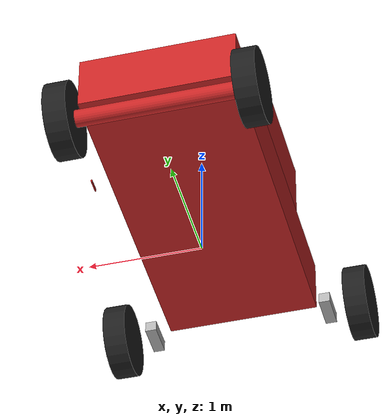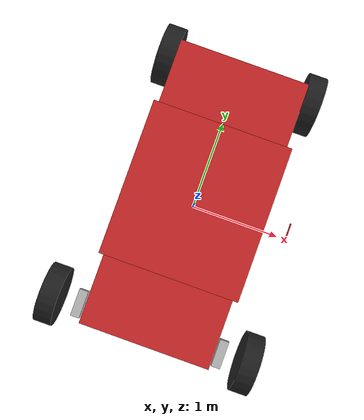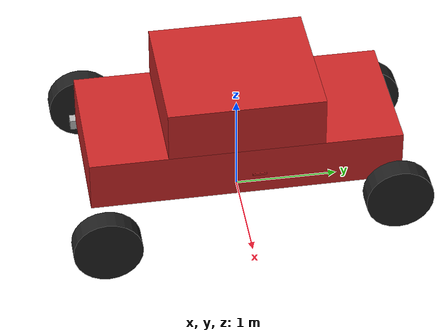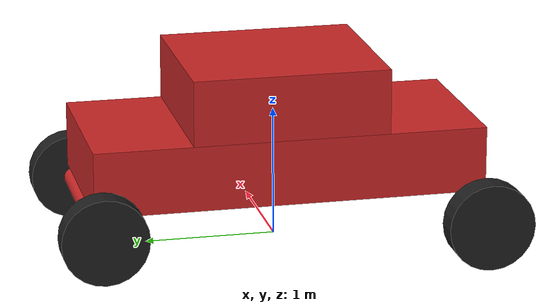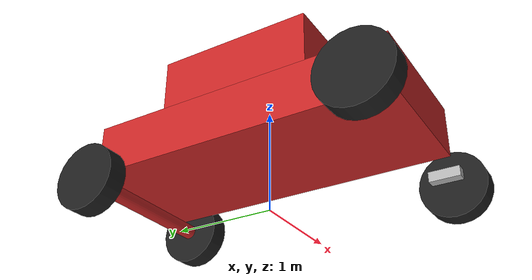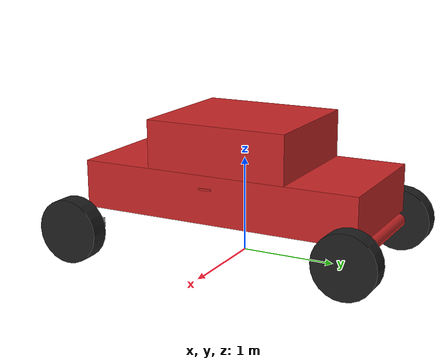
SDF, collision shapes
<?xml version="1.0" ?>
<sdf version='1.7'>
  <model name='steering_robot'>
    <link name='map'>
      <inertial>
        <pose>0 0.05241 0.011928 0 -0 0</pose>
        <mass>830</mass>
        <inertia>
          <ixx>687.053</ixx>
          <ixy>0</ixy>
          <ixz>0</ixz>
          <iyy>149.021</iyy>
          <iyz>-13.8361</iyz>
          <izz>783.643</izz>
        </inertia>
      </inertial>
      <collision name='map_fixed_joint_lump__ferrari_chassis_collision'>
        <pose>0 0 0.7 0 -0 0</pose>
        <geometry>
          <box>
            <size>1.357 3 0.5</size>
          </box>
        </geometry>
        <surface>
          <contact>
            <ode/>
          </contact>
          <friction>
            <ode/>
          </friction>
        </surface>
      </collision>
      <collision name='map_fixed_joint_lump__ferrari_chassis_collision_1'>
        <pose>0 0 1.2 0 -0 0</pose>
        <geometry>
          <box>
            <size>1.357 1.5 0.5</size>
          </box>
        </geometry>
        <surface>
          <contact>
            <ode/>
          </contact>
          <friction>
            <ode/>
          </friction>
        </surface>
      </collision>
      <collision name='map_fixed_joint_lump__camera_link_collision_2'>
        <pose>0.972286 0.065 0.907 0 -0 0</pose>
        <geometry>
          <box>
            <size>0.012 0.132 0.02</size>
          </box>
        </geometry>
      </collision>
      <collision name='map_fixed_joint_lump__rear_axle_collision_3'>
        <pose>0 1.45 0.33 0 1.5708 0</pose>
        <geometry>
          <cylinder>
            <length>1.6</length>
            <radius>0.075</radius>
          </cylinder>
        </geometry>
      </collision>
      <visual name='map_fixed_joint_lump__ferrari_chassis_visual'>
        <pose>0 0 0.7 0 -0 0</pose>
        <geometry>
          <box>
            <size>1.357 3 0.5</size>
          </box>
        </geometry>
        <material>
          <script>
            <name>Gazebo/Red</name>
            <uri>file://media/materials/scripts/gazebo.material</uri>
          </script>
        </material>
      </visual>
      <visual name='map_fixed_joint_lump__ferrari_chassis_visual_1'>
        <pose>0 0 1.2 0 -0 0</pose>
        <geometry>
          <box>
            <size>1.357 1 0.5</size>
          </box>
        </geometry>
        <material>
          <script>
            <name>Gazebo/Red</name>
            <uri>file://media/materials/scripts/gazebo.material</uri>
          </script>
        </material>
      </visual>
      <visual name='map_fixed_joint_lump__ferrari_chassis_visual_2'>
        <pose>0 0 0.7 0 -0 0</pose>
        <geometry>
          <box>
            <size>1.557 2 0.5</size>
          </box>
        </geometry>
        <material>
          <script>
            <name>Gazebo/Red</name>
            <uri>file://media/materials/scripts/gazebo.material</uri>
          </script>
        </material>
      </visual>
      <visual name='map_fixed_joint_lump__ferrari_chassis_visual_3'>
        <pose>0 0 0.7 0 -0 0</pose>
        <geometry>
          <box>
            <size>1.757 1.5 0.5</size>
          </box>
        </geometry>
        <material>
          <script>
            <name>Gazebo/Red</name>
            <uri>file://media/materials/scripts/gazebo.material</uri>
          </script>
        </material>
      </visual>
      <visual name='map_fixed_joint_lump__ferrari_chassis_visual_4'>
        <pose>0.5 1.4 1.05 0 -0 0</pose>
        <geometry>
          <box>
            <size>0.1 0.1 0.3</size>
          </box>
        </geometry>
        <material>
          <script>
            <name>Gazebo/Red</name>
            <uri>file://media/materials/scripts/gazebo.material</uri>
          </script>
        </material>
      </visual>
      <visual name='map_fixed_joint_lump__ferrari_chassis_visual_5'>
        <pose>-0.5 1.4 1.05 0 -0 0</pose>
        <geometry>
          <box>
            <size>0.1 0.1 0.3</size>
          </box>
        </geometry>
        <material>
          <script>
            <name>Gazebo/Red</name>
            <uri>file://media/materials/scripts/gazebo.material</uri>
          </script>
        </material>
      </visual>
      <visual name='map_fixed_joint_lump__ferrari_chassis_visual_6'>
        <pose>0 1.4 1.25 0 -0 0</pose>
        <geometry>
          <box>
            <size>1.357 0.2 0.1</size>
          </box>
        </geometry>
        <material>
          <script>
            <name>Gazebo/Red</name>
            <uri>file://media/materials/scripts/gazebo.material</uri>
          </script>
        </material>
      </visual>
      <visual name='map_fixed_joint_lump__ferrari_chassis_visual_7'>
        <pose>0 -1 1.05 0.6 -0 0</pose>
        <geometry>
          <box>
            <size>1.357 1.357 0.1</size>
          </box>
        </geometry>
        <material>
          <script>
            <name>Gazebo/Red</name>
            <uri>file://media/materials/scripts/gazebo.material</uri>
          </script>
        </material>
      </visual>
      <visual name='map_fixed_joint_lump__ferrari_chassis_visual_8'>
        <pose>0 0.75 1.05 -0.8 0 0</pose>
        <geometry>
          <box>
            <size>1.357 0.8785 0.1</size>
          </box>
        </geometry>
        <material>
          <script>
            <name>Gazebo/Red</name>
            <uri>file://media/materials/scripts/gazebo.material</uri>
          </script>
        </material>
      </visual>
      <visual name='map_fixed_joint_lump__camera_link_visual_9'>
        <pose>0.969286 0 0.9 1.57 -0 1.57</pose>
        <geometry>
          <mesh>
            <scale>1 1 1</scale>
            <uri>model://autopark/urdf/meshes/sensors/r200.dae</uri>
          </mesh>
        </geometry>
      </visual>
      <visual name='map_fixed_joint_lump__hokuyo_link_visual_10'>
        <pose>0.969286 0 0.7 0 -0 3.14</pose>
        <geometry>
          <box>
            <size>0.05 0.05 0.05</size>
          </box>
        </geometry>
        <material>
          <script>
            <name>Gazebo/Blue</name>
            <uri>file://media/materials/scripts/gazebo.material</uri>
          </script>
        </material>
      </visual>
      <visual name='map_fixed_joint_lump__rear_axle_visual_11'>
        <pose>0 1.45 0.33 0 1.5708 0</pose>
        <geometry>
          <cylinder>
            <length>1.6</length>
            <radius>0.075</radius>
          </cylinder>
        </geometry>
      </visual>
      <velocity_decay/>
      <velocity_decay/>
      <sensor name='camera1' type='depth'>
        <always_on>1</always_on>
        <visualize>0</visualize>
        <camera>
          <horizontal_fov>1.3439</horizontal_fov>
          <image>
            <width>1920</width>
            <height>1080</height>
            <format>R8G8B8</format>
          </image>
          <depth_camera>
            <output>depths</output>
          </depth_camera>
          <clip>
            <near>0.03</near>
            <far>100</far>
          </clip>
        </camera>
        <plugin name='camera_controller' filename='libgazebo_ros_openni_kinect.so'>
          <baseline>0.2</baseline>
          <alwaysOn>1</alwaysOn>
          <updateRate>30.0</updateRate>
          <cameraName>camera</cameraName>
          <frameName>camera_rgb_optical_frame</frameName>
          <imageTopicName>rgb/image_raw</imageTopicName>
          <depthImageTopicName>depth/image_raw</depthImageTopicName>
          <pointCloudTopicName>depth/points</pointCloudTopicName>
          <cameraInfoTopicName>rgb/camera_info</cameraInfoTopicName>
          <depthImageCameraInfoTopicName>depth/camera_info</depthImageCameraInfoTopicName>
          <pointCloudCutoff>0.4</pointCloudCutoff>
          <hackBaseline>0.07</hackBaseline>
          <distortionK1>0.0</distortionK1>
          <distortionK2>0.0</distortionK2>
          <distortionK3>0.0</distortionK3>
          <distortionT1>0.0</distortionT1>
          <distortionT2>0.0</distortionT2>
          <CxPrime>0.0</CxPrime>
          <Cx>0.0</Cx>
          <Cy>0.0</Cy>
          <focalLength>0</focalLength>
          <hackBaseline>0</hackBaseline>
        </plugin>
        <pose>0.974286 0.018 0.913 0 -0 0</pose>
      </sensor>
      <gravity>1</gravity>
      <velocity_decay/>
      <sensor name='head_hokuyo_sensor' type='ray'>
        <visualize>1</visualize>
        <update_rate>40</update_rate>
        <ray>
          <scan>
            <horizontal>
              <samples>720</samples>
              <resolution>1</resolution>
              <min_angle>-1.5708</min_angle>
              <max_angle>1.5708</max_angle>
            </horizontal>
          </scan>
          <range>
            <min>0.1</min>
            <max>8</max>
            <resolution>0.001</resolution>
          </range>
        </ray>
        <plugin name='gazebo_ros_head_hokuyo_controller' filename='libgazebo_ros_laser.so'>
          <topicName>/scan</topicName>
          <frameName>hokuyo_link</frameName>
        </plugin>
        <pose>0.969286 0 0.7 0 -0 0</pose>
      </sensor>
    </link>
    <joint name='front_left_steering_joint' type='revolute'>
      <pose relative_to='map'>0.8 -1.4 0.33 0 -0 0</pose>
      <parent>map</parent>
      <child>front_left_steering</child>
      <axis>
        <xyz>0 0 1</xyz>
        <limit>
          <lower>-0.6</lower>
          <upper>0.6</upper>
          <effort>10000</effort>
          <velocity>1000</velocity>
        </limit>
        <dynamics>
          <spring_reference>0</spring_reference>
          <spring_stiffness>0</spring_stiffness>
        </dynamics>
      </axis>
      <physics>
        <ode>
          <limit>
            <cfm>0</cfm>
            <erp>0.2</erp>
          </limit>
        </ode>
      </physics>
    </joint>
    <link name='front_left_steering'>
      <pose relative_to='front_left_steering_joint'>0 0 0 0 -0 0</pose>
      <inertial>
        <pose>0 0 0 0 -0 0</pose>
        <mass>50</mass>
        <inertia>
          <ixx>0.416667</ixx>
          <ixy>0</ixy>
          <ixz>0</ixz>
          <iyy>0.0833333</iyy>
          <iyz>0</iyz>
          <izz>0.416667</izz>
        </inertia>
      </inertial>
      <collision name='front_left_steering_collision'>
        <pose>0 0 0 0 -0 0</pose>
        <geometry>
          <box>
            <size>0.1 0.3 0.1</size>
          </box>
        </geometry>
      </collision>
      <visual name='front_left_steering_visual'>
        <pose>0 0 0 0 -0 0</pose>
        <geometry>
          <box>
            <size>0.1 0.3 0.1</size>
          </box>
        </geometry>
      </visual>
    </link>
    <joint name='front_right_steering_wheel_joint' type='revolute'>
      <pose relative_to='front_left_steering'>0.3 0 0 0 -0 0</pose>
      <parent>front_left_steering</parent>
      <child>front_right_steering_wheel</child>
      <axis>
        <xyz>1 0 0</xyz>
        <limit>
          <lower>-1e+16</lower>
          <upper>1e+16</upper>
        </limit>
        <dynamics>
          <damping>0.01</damping>
          <friction>0</friction>
          <spring_reference>0</spring_reference>
          <spring_stiffness>0</spring_stiffness>
        </dynamics>
      </axis>
      <physics>
        <ode>
          <limit>
            <cfm>0</cfm>
            <erp>0.2</erp>
          </limit>
        </ode>
      </physics>
    </joint>
    <link name='front_right_steering_wheel'>
      <pose relative_to='front_right_steering_wheel_joint'>0 0 0 0 -0 0</pose>
      <inertial>
        <pose>0 0 0 0 -0 0</pose>
        <mass>30</mass>
        <inertia>
          <ixx>0.91675</ixx>
          <ixy>0</ixy>
          <ixz>0</ixz>
          <iyy>0.91675</iyy>
          <iyz>0</iyz>
          <izz>1.6335</izz>
        </inertia>
      </inertial>
      <collision name='front_right_steering_wheel_collision'>
        <pose>0 0 0 0 1.5708 0</pose>
        <geometry>
          <cylinder>
            <length>0.2</length>
            <radius>0.33</radius>
          </cylinder>
        </geometry>
        <surface>
          <contact>
            <ode/>
          </contact>
          <friction>
            <ode/>
          </friction>
        </surface>
      </collision>
      <visual name='front_right_steering_wheel_visual'>
        <pose>0 0 0 0 -0 0</pose>
        <geometry>
          <mesh>
            <scale>0.01 0.01 0.01</scale>
            <uri>model://autopark/urdf/meshes/wheel.dae</uri>
          </mesh>
        </geometry>
        <material>
          <script>
            <name>Gazebo/Black</name>
            <uri>file://media/materials/scripts/gazebo.material</uri>
          </script>
        </material>
      </visual>
      <gravity>1</gravity>
      <velocity_decay/>
    </link>
    <joint name='front_right_steering_joint' type='revolute'>
      <pose relative_to='map'>-0.8 -1.4 0.33 0 -0 0</pose>
      <parent>map</parent>
      <child>front_right_steering</child>
      <axis>
        <xyz>0 0 1</xyz>
        <limit>
          <lower>-0.6</lower>
          <upper>0.6</upper>
          <effort>10000</effort>
          <velocity>1000</velocity>
        </limit>
        <dynamics>
          <spring_reference>0</spring_reference>
          <spring_stiffness>0</spring_stiffness>
        </dynamics>
      </axis>
      <physics>
        <ode>
          <limit>
            <cfm>0</cfm>
            <erp>0.2</erp>
          </limit>
        </ode>
      </physics>
    </joint>
    <link name='front_right_steering'>
      <pose relative_to='front_right_steering_joint'>0 0 0 0 -0 0</pose>
      <inertial>
        <pose>0 0 0 0 -0 0</pose>
        <mass>50</mass>
        <inertia>
          <ixx>0.416667</ixx>
          <ixy>0</ixy>
          <ixz>0</ixz>
          <iyy>0.0833333</iyy>
          <iyz>0</iyz>
          <izz>0.416667</izz>
        </inertia>
      </inertial>
      <collision name='front_right_steering_collision'>
        <pose>0 0 0 0 -0 0</pose>
        <geometry>
          <box>
            <size>0.1 0.3 0.1</size>
          </box>
        </geometry>
      </collision>
      <visual name='front_right_steering_visual'>
        <pose>0 0 0 0 -0 0</pose>
        <geometry>
          <box>
            <size>0.1 0.3 0.1</size>
          </box>
        </geometry>
      </visual>
    </link>
    <joint name='front_left_steering_wheel_joint' type='revolute'>
      <pose relative_to='front_right_steering'>-0.3 0 0 0 -0 0</pose>
      <parent>front_right_steering</parent>
      <child>front_left_steering_wheel</child>
      <axis>
        <xyz>1 0 0</xyz>
        <limit>
          <lower>-1e+16</lower>
          <upper>1e+16</upper>
        </limit>
        <dynamics>
          <damping>0.01</damping>
          <friction>0</friction>
          <spring_reference>0</spring_reference>
          <spring_stiffness>0</spring_stiffness>
        </dynamics>
      </axis>
      <physics>
        <ode>
          <limit>
            <cfm>0</cfm>
            <erp>0.2</erp>
          </limit>
        </ode>
      </physics>
    </joint>
    <link name='front_left_steering_wheel'>
      <pose relative_to='front_left_steering_wheel_joint'>0 0 0 0 -0 0</pose>
      <inertial>
        <pose>0 0 0 0 -0 0</pose>
        <mass>30</mass>
        <inertia>
          <ixx>0.91675</ixx>
          <ixy>0</ixy>
          <ixz>0</ixz>
          <iyy>0.91675</iyy>
          <iyz>0</iyz>
          <izz>1.6335</izz>
        </inertia>
      </inertial>
      <collision name='front_left_steering_wheel_collision'>
        <pose>0 0 0 0 1.5708 0</pose>
        <geometry>
          <cylinder>
            <length>0.2</length>
            <radius>0.33</radius>
          </cylinder>
        </geometry>
        <surface>
          <contact>
            <ode/>
          </contact>
          <friction>
            <ode/>
          </friction>
        </surface>
      </collision>
      <visual name='front_left_steering_wheel_visual'>
        <pose>0 0 0 0 -0 0</pose>
        <geometry>
          <mesh>
            <scale>0.01 0.01 0.01</scale>
            <uri>model://autopark/urdf/meshes/wheel.dae</uri>
          </mesh>
        </geometry>
        <material>
          <script>
            <name>Gazebo/Black</name>
            <uri>file://media/materials/scripts/gazebo.material</uri>
          </script>
        </material>
      </visual>
      <gravity>1</gravity>
      <velocity_decay/>
    </link>
    <joint name='rear_left_wheel_joint' type='revolute'>
      <pose relative_to='map'>0.8 1.45 0.33 0 -0 0</pose>
      <parent>map</parent>
      <child>rear_left_wheel</child>
      <axis>
        <xyz>1 0 0</xyz>
        <limit>
          <lower>-1e+16</lower>
          <upper>1e+16</upper>
        </limit>
        <dynamics>
          <damping>0.01</damping>
          <friction>0</friction>
          <spring_reference>0</spring_reference>
          <spring_stiffness>0</spring_stiffness>
        </dynamics>
      </axis>
      <physics>
        <ode>
          <limit>
            <cfm>0</cfm>
            <erp>0.2</erp>
          </limit>
        </ode>
      </physics>
    </joint>
    <link name='rear_left_wheel'>
      <pose relative_to='rear_left_wheel_joint'>0 0 0 0 -0 0</pose>
      <inertial>
        <pose>0 0 0 0 -0 0</pose>
        <mass>30</mass>
        <inertia>
          <ixx>0.91675</ixx>
          <ixy>0</ixy>
          <ixz>0</ixz>
          <iyy>0.91675</iyy>
          <iyz>0</iyz>
          <izz>1.6335</izz>
        </inertia>
      </inertial>
      <collision name='rear_left_wheel_collision'>
        <pose>0 0 0 0 1.5708 0</pose>
        <geometry>
          <cylinder>
            <length>0.2</length>
            <radius>0.33</radius>
          </cylinder>
        </geometry>
        <surface>
          <contact>
            <ode/>
          </contact>
          <friction>
            <ode/>
          </friction>
        </surface>
      </collision>
      <visual name='rear_left_wheel_visual'>
        <pose>0 0 0 0 -0 0</pose>
        <geometry>
          <mesh>
            <scale>0.01 0.01 0.01</scale>
            <uri>model://autopark/urdf/meshes/wheel.dae</uri>
          </mesh>
        </geometry>
        <material>
          <script>
            <name>Gazebo/Black</name>
            <uri>file://media/materials/scripts/gazebo.material</uri>
          </script>
        </material>
      </visual>
      <gravity>1</gravity>
      <velocity_decay/>
    </link>
    <joint name='rear_right_wheel_joint' type='revolute'>
      <pose relative_to='map'>-0.8 1.45 0.33 0 -0 0</pose>
      <parent>map</parent>
      <child>rear_right_wheel</child>
      <axis>
        <xyz>1 0 0</xyz>
        <limit>
          <lower>-1e+16</lower>
          <upper>1e+16</upper>
        </limit>
        <dynamics>
          <damping>0.01</damping>
          <friction>0</friction>
          <spring_reference>0</spring_reference>
          <spring_stiffness>0</spring_stiffness>
        </dynamics>
      </axis>
      <physics>
        <ode>
          <limit>
            <cfm>0</cfm>
            <erp>0.2</erp>
          </limit>
        </ode>
      </physics>
    </joint>
    <link name='rear_right_wheel'>
      <pose relative_to='rear_right_wheel_joint'>0 0 0 0 -0 0</pose>
      <inertial>
        <pose>0 0 0 0 -0 0</pose>
        <mass>30</mass>
        <inertia>
          <ixx>0.91675</ixx>
          <ixy>0</ixy>
          <ixz>0</ixz>
          <iyy>0.91675</iyy>
          <iyz>0</iyz>
          <izz>1.6335</izz>
        </inertia>
      </inertial>
      <collision name='rear_right_wheel_collision'>
        <pose>0 0 0 0 1.5708 0</pose>
        <geometry>
          <cylinder>
            <length>0.2</length>
            <radius>0.33</radius>
          </cylinder>
        </geometry>
        <surface>
          <contact>
            <ode/>
          </contact>
          <friction>
            <ode/>
          </friction>
        </surface>
      </collision>
      <visual name='rear_right_wheel_visual'>
        <pose>0 0 0 0 -0 0</pose>
        <geometry>
          <mesh>
            <scale>0.01 0.01 0.01</scale>
            <uri>model://autopark/urdf/meshes/wheel.dae</uri>
          </mesh>
        </geometry>
        <material>
          <script>
            <name>Gazebo/Black</name>
            <uri>file://media/materials/scripts/gazebo.material</uri>
          </script>
        </material>
      </visual>
      <gravity>1</gravity>
      <velocity_decay/>
    </link>
    <plugin name='gazebo_ros_control' filename='libgazebo_ros_control.so'>
      <robotNamespace>/steering_robot</robotNamespace>
      <robotSimType>gazebo_ros_control/DefaultRobotHWSim</robotSimType>
      <legacyModeNS>1</legacyModeNS>
    </plugin>
    <plugin name='joint_state_publisher' filename='libgazebo_ros_joint_state_publisher.so'>
      <jointName>rear_right_wheel_joint, rear_left_wheel_joint, front_right_steering_joint, front_left_steering_joint, front_right_steering_wheel_joint, front_left_steering_wheel_joint</jointName>
      <updateRate>50.0</updateRate>
      <robotNamespace>/steering_robot</robotNamespace>
      <alwaysOn>1</alwaysOn>
    </plugin>
    <plugin name='cmdvel_controller' filename='libcatvehiclegazebo.so'>
      <robotNamespace>/steering_robot</robotNamespace>
    </plugin>
    <plugin name='gazebo_ros_control' filename='libgazebo_ros_control.so'/>
    <static>0</static>
    <plugin name='robot_groundtruth_sim' filename='libgazebo_ros_p3d.so'>
      <alwaysOn>1</alwaysOn>
      <updateRate>100.0</updateRate>
      <topicName>ground_truth/state</topicName>
      <gaussianNoise>0.0</gaussianNoise>
      <frameName>map</frameName>
      <xyzOffsets>0 0 0</xyzOffsets>
      <rpyOffsets>0 0 0</rpyOffsets>
      <bodyName>map</bodyName>
      <xyzOffset>0 0 0</xyzOffset>
      <rpyOffset>0 -0 0</rpyOffset>
    </plugin>
  </model>
</sdf>
